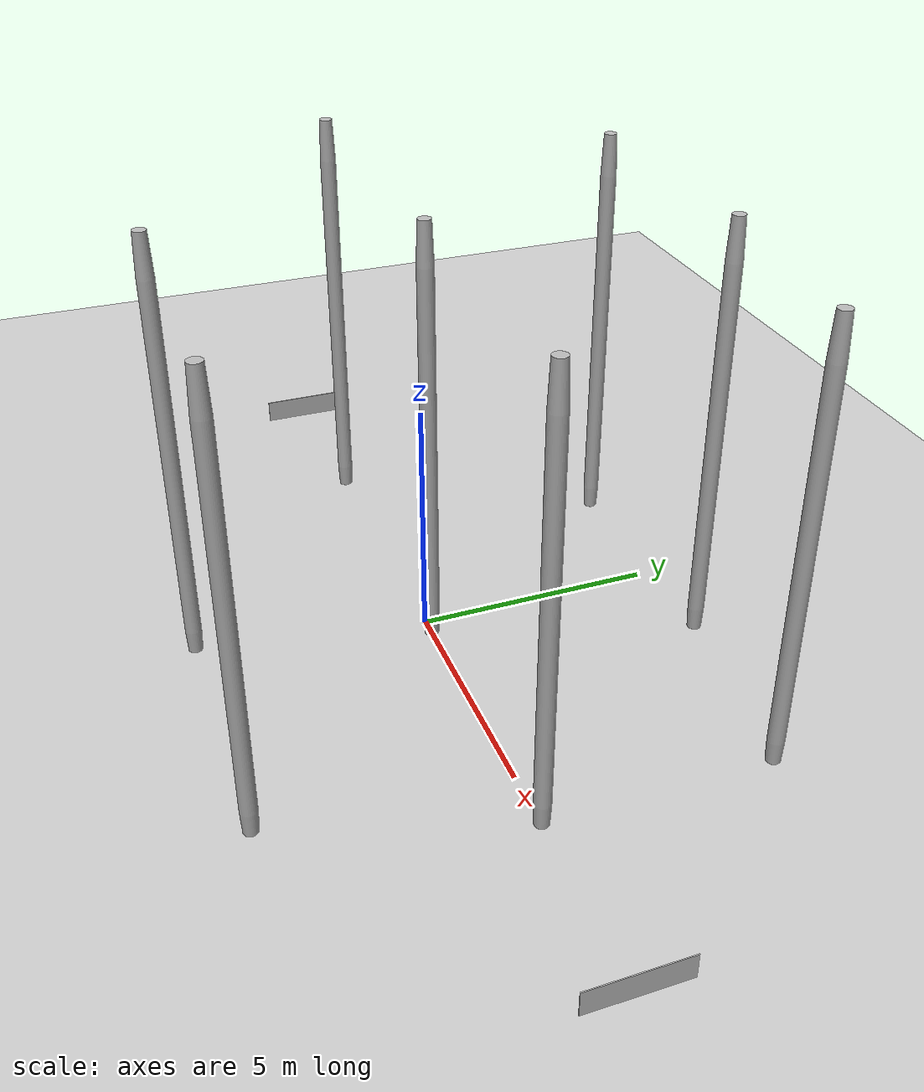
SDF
<?xml version="1.0" ?>
<sdf version="1.4">
  <!--Generated by blend2world.py-->
  <world name="default">
    <scene>
      <ambient>0.5 0.5 0.5 1</ambient>
      <background>0.5 0.5 0.5 1</background>
      <shadows>false</shadows>
    </scene>
    <plugin name="ros_interface_plugin" filename="librotors_gazebo_ros_interface_plugin.so"></plugin>
    <plugin name='gazebo_octomap' filename='librotors_gazebo_octomap_plugin.so'></plugin>

    <gui>
      <camera name="user_camera">
        <pose>0 0 30 0 1.57 1.57</pose>
      </camera>
    </gui>

    <physics type="ode">
      <gravity>0 0 -9.81</gravity>
      <ode>
        <solver>
          <type>quick</type>
          <iters>1000</iters>
          <sor>1.3</sor>
        </solver>
        <constraints>
          <cfm>0.0</cfm>
          <erp>0.2</erp>
          <contact_max_correcting_vel>100.0</contact_max_correcting_vel>
          <contact_surface_layer>0.01</contact_surface_layer>
        </constraints>
      </ode>
      <real_time_update_rate>100</real_time_update_rate>
      <real_time_factor>1</real_time_factor>
      <max_step_size>0.01</max_step_size>
    </physics>

    <light name="directional_light_1" type="directional">
      <cast_shadows>false</cast_shadows>
      <pose>0 0 30 0.1 0.1 0</pose>
      <diffuse>1.0 1.0 1.0 1</diffuse>
      <specular>.1 .1 .1 1</specular>
      <attenuation>
        <range>300</range>
      </attenuation>
      <direction>0.1 0.1 -1</direction>
    </light>

    <include>
      <uri>model://asphalt_plane</uri>
    </include>

    <include>
      <name>barrel_110l</name>
      <pose>-6.063030242919922 0.0 0.0  0.0 0.0 0.0</pose>
      <uri>model://barrel_110l</uri>
    </include>
    <include>
      <name>barrel_110l.001</name>
      <pose>-3.0217368602752686 5.237995624542236 0.0  0.0 0.0 0.0</pose>
      <uri>model://barrel_110l</uri>
    </include>
    <include>
      <name>barrel_110l.002</name>
      <pose>2.1513140201568604 5.237995624542236 0.0  0.0 0.0 0.0</pose>
      <uri>model://barrel_110l</uri>
    </include>
    <include>
      <name>barrel_110l.003</name>
      <pose>6.276121139526367 4.623660087585449 0.0  0.0 0.0 0.0</pose>
      <uri>model://barrel_110l</uri>
    </include>
    <include>
      <name>barrel_110l.004</name>
      <pose>4.665648460388184 -4.783429145812988 0.0  0.0 0.0 0.0</pose>
      <uri>model://barrel_110l</uri>
    </include>
    <include>
      <name>barrel_110l.006</name>
      <pose>6.263016223907471 -0.004051387310028076 0.0  0.0 0.0 0.0</pose>
      <uri>model://barrel_110l</uri>
    </include>
    <include>
      <name>barrel_110l.007</name>
      <pose>0.43812131881713867 -0.004051387310028076 0.0  0.0 0.0 0.0</pose>
      <uri>model://barrel_110l</uri>
    </include>
    <include>
      <name>barrel_110l.008</name>
      <pose>-0.7261247634887695 -4.73142147064209 0.0  0.0 0.0 0.0</pose>
      <uri>model://barrel_110l</uri>
    </include>

    <include>
      <name>wall_2x1.083</name>
      <pose>-10 0 0  0.0 0.0 1.570796251296997</pose>
      <uri>model://wall_2x1</uri>
    </include>

    <include>
      <name>wall_2x1.084</name>
      <pose>10 0 0  0.0 0.0 1.570796251296997</pose>
      <uri>model://wall_2x1</uri>
    </include>

  </world>
</sdf>

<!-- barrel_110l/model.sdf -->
<sdf version="1.4">
  <!--Generated by blend2world.py-->
    <model name="barel_110l">
      <pose>0.0 0.0 0.0  0.0 0.0 0.0</pose>
      <static>true</static>
      <link name="body">
        <collision name="collision">
          <geometry>
            <mesh>
              <uri>model://barrel_110l/meshes/barrel_110l.dae</uri>
              <scale>1 1 15</scale>
            </mesh>
          </geometry>
        </collision>
        <visual name="visual">
          <geometry>
            <mesh>
              <uri>model://barrel_110l/meshes/barrel_110l.dae</uri>
              <scale>1 1 15</scale>
            </mesh>
          </geometry>
	  <material>
            <script>
              <uri>model://barrel_110l/textures/barrel_110l.jpg</uri>
            </script>
          </material>
        </visual>
      </link>
    </model>
</sdf>

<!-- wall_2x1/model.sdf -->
<sdf version="1.4">
  <!--Generated by blend2world.py-->
    <model name="wall_2x1">
      <pose>0.0 0.0 0.0  0.0 0.0 0.0</pose>
      <static>true</static>
      <link name="body">
        <collision name="collision">
          <geometry>
            <mesh>
              <uri>model://wall_2x1/meshes/wall_2x1.dae</uri>
              <scale>1 1 1</scale>
            </mesh>
          </geometry>
        </collision>
        <visual name="visual">
          <geometry>
            <mesh>
              <uri>model://wall_2x1/meshes/wall_2x1.dae</uri>
              <scale>1 1 1</scale>
            </mesh>
          </geometry>
	  <material>
            <script>
              <uri>model://wall_2x1/textures/chipboard.jpg</uri>
            </script>
          </material>
        </visual>
      </link>
    </model>
</sdf>
